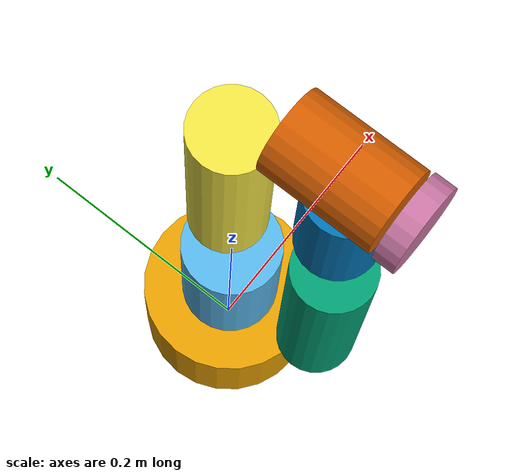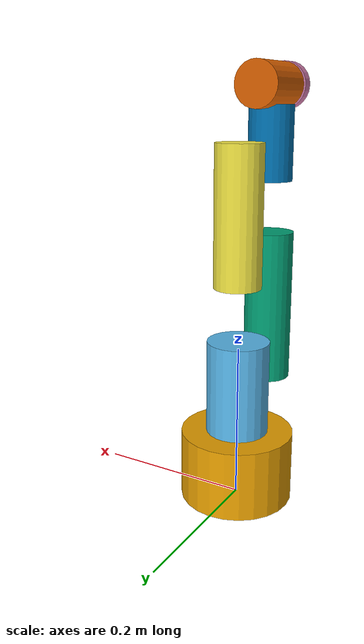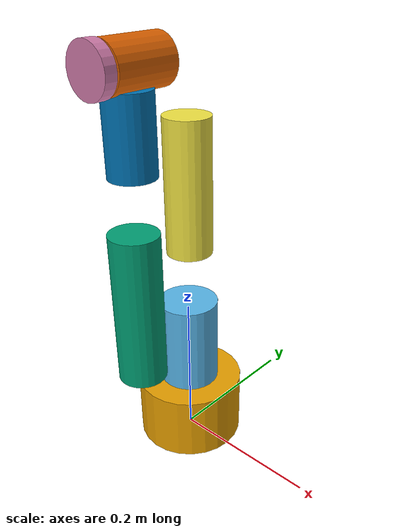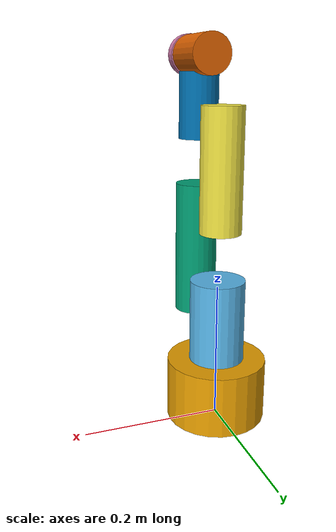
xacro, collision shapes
<?xml version="1.0"?>
<robot xmlns:xacro="http://www.ros.org/wiki/xacro" name="mycobot320">

    <xacro:include filename="$(find mycobot320_description)/urdf/mech/mycobot320_base.urdf.xacro"/>
    <xacro:include filename="$(find mycobot320_description)/urdf/mech/mycobot320_arm.urdf.xacro"/>

    <!-- Define the base link for moveit, gazebo, ros2_control, etc...-->
    <link name="base_link"/>
    <joint name="base_link_to_base" type="fixed">
        <parent link="base_link"/>
        <child link="base"/>
        <origin xyz="0 0 0" rpy="0 0 0"/>
    </joint>

</robot>

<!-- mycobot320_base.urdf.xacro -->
<robot xmlns:xacro="http://www.ros.org/wiki/xacro" name="mycobot320">

  <link name="base">
    <visual>
      <geometry>
        <mesh filename="package://mycobot320_description/meshes/mycobot320/visual/base.dae"/>
      </geometry>
      <origin xyz="0.0 0 0" rpy="0 0 1.5708"/>
    </visual>
    <collision>
      <geometry>
        <cylinder length="0.09" radius="0.0725"/>
      </geometry>
      <origin xyz="0.0 0 0.045" rpy="0 0 1.5708"/>
    </collision>
  </link>

</robot>

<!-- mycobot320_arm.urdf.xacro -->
<robot xmlns:xacro="http://www.ros.org/wiki/xacro" name="mycobot320">

    <xacro:macro name="cylinder_link" params="name mesh origin rpy collision_origin collision_rpy length radius ">
        <link name="${name}">
            <visual>
                <geometry>
                    <mesh filename="${mesh}"/>
                </geometry>
                <origin xyz="${origin}" rpy="${rpy}"/>
            </visual>
            <collision>
                <origin xyz="${collision_origin}"  rpy="${collision_rpy}"/>
                <geometry>
                    <cylinder length="${length}" radius="${radius}"/>
                </geometry>
            </collision>
        </link>
    </xacro:macro>

    <!--
    original_length = 0.09
    length = original_length + 3/4 radius
    collision_origin = {0,0,-original_length/2+radius/2}-->
    <xacro:cylinder_link
        name="link1"
        mesh="package://mycobot320_description/meshes/mycobot320/visual/link1.dae"
        origin="0.0 0.0 -0.078"
        rpy="0 0 1.5708"
        collision_origin="0.0 0.0 -0.0235"
        collision_rpy="0 0 1.5708"
        length="0.12375"
        radius="0.04"/>
    <!--All length, radius and collion pose had been graphically obtained.-->
    <xacro:cylinder_link
        name="link2"
        mesh="package://mycobot320_description/meshes/mycobot320/visual/link2.dae"
        origin="0.0 0.0 -0.04"
        rpy="0 1.5708 0"
        collision_origin="0.065 0.0 0.0005"
        collision_rpy="0 1.5708 0"
        length="0.2"
        radius="0.0315"/>

    <xacro:cylinder_link
        name="link3"
        mesh="package://mycobot320_description/meshes/mycobot320/visual/link3.dae"
        origin="0.0 0.0 0.039"
        rpy="1.5708 1.5708 1.5708"
        collision_origin="0.06 0.0 -0.005"
        collision_rpy="1.5708 1.5708 1.5708"
        length="0.175"
        radius="0.03"/>

    <xacro:cylinder_link
        name="link4"
        mesh="package://mycobot320_description/meshes/mycobot320/visual/link4.dae"
        origin="0.0 -0.0024 -0.05"
        rpy="1.5708 1.5708 0"
        collision_origin="0.0 -0.0234 -0.0"
        collision_rpy="1.5708 1.5708 0"
        length="0.095"
        radius="0.029"/>

    <xacro:cylinder_link
        name="link5"
        mesh="package://mycobot320_description/meshes/mycobot320/visual/link5.dae"
        origin="0.0 0.0 -0.05"
        rpy="0 0 -1.5708"
        collision_origin="0.0 -0.008 0"
        collision_rpy="0 1.5708 -1.5708"
        length="0.08"
        radius="0.029"/>

    <xacro:cylinder_link
        name="link6"
        mesh="package://mycobot320_description/meshes/mycobot320/visual/link6.dae"
        origin="0.0 0.0 -0.022"
        rpy="1.5708 1.5708 0"
        collision_origin="0.0 0.0 -0.0125"
        collision_rpy="0 0 0"
        length="0.015"
        radius="0.03"/>

    <xacro:macro name="revolute_joint" params="name parent child origin rpy axis lower upper">
        <joint name="${name}" type="revolute">
            <parent link="${parent}"/>
            <child link="${child}"/>
            <origin xyz="${origin}" rpy="${rpy}"/>
            <axis xyz="${axis}"/>
            <limit lower="${lower}" upper="${upper}" effort="999.0" velocity="0"/>
        </joint>
    </xacro:macro>

    <xacro:revolute_joint
        name="joint1"
        parent="base"
        child="link1"
        origin="0 0 0.173"
        rpy="0 0 0"
        axis="0 0 1"
        lower="-2.9321"
        upper="2.9321"/>

    <xacro:revolute_joint
        name="joint2"
        parent="link1"
        child="link2"
        origin="0 -0.086 0"
        rpy="0 -1.5708 1.5708"
        axis="0 0 1"
        lower="-2.3561"
        upper="2.3561"/>

    <xacro:revolute_joint
        name="joint3"
        parent="link2"
        child="link3"
        origin="0.13635 0 -0.086"
        rpy="0 0 0"
        axis="0 0 1"
        lower="-2.5307"
        upper="2.5307"/>

    <xacro:revolute_joint
        name="joint4"
        parent="link3"
        child="link4"
        origin="0.1195 0 0.082"
        rpy="0 0 1.57080"
        axis="0 0 1"
        lower="-2.5830"
        upper="2.5830"/>

    <xacro:revolute_joint
        name="joint5"
        parent="link4"
        child="link5"
        origin="0 -0.09415 0.0"
        rpy="1.5708 0 0"
        axis="0 0 1"
        lower="-2.9321"
        upper="2.9321"/>

    <xacro:revolute_joint
        name="joint6"
        parent="link5"
        child="link6"
        origin="0 0.055 0.0"
        rpy="-1.5708 0 0"
        axis="0 0 1"
        lower="-3.14159"
        upper="3.14159"/>

</robot>
